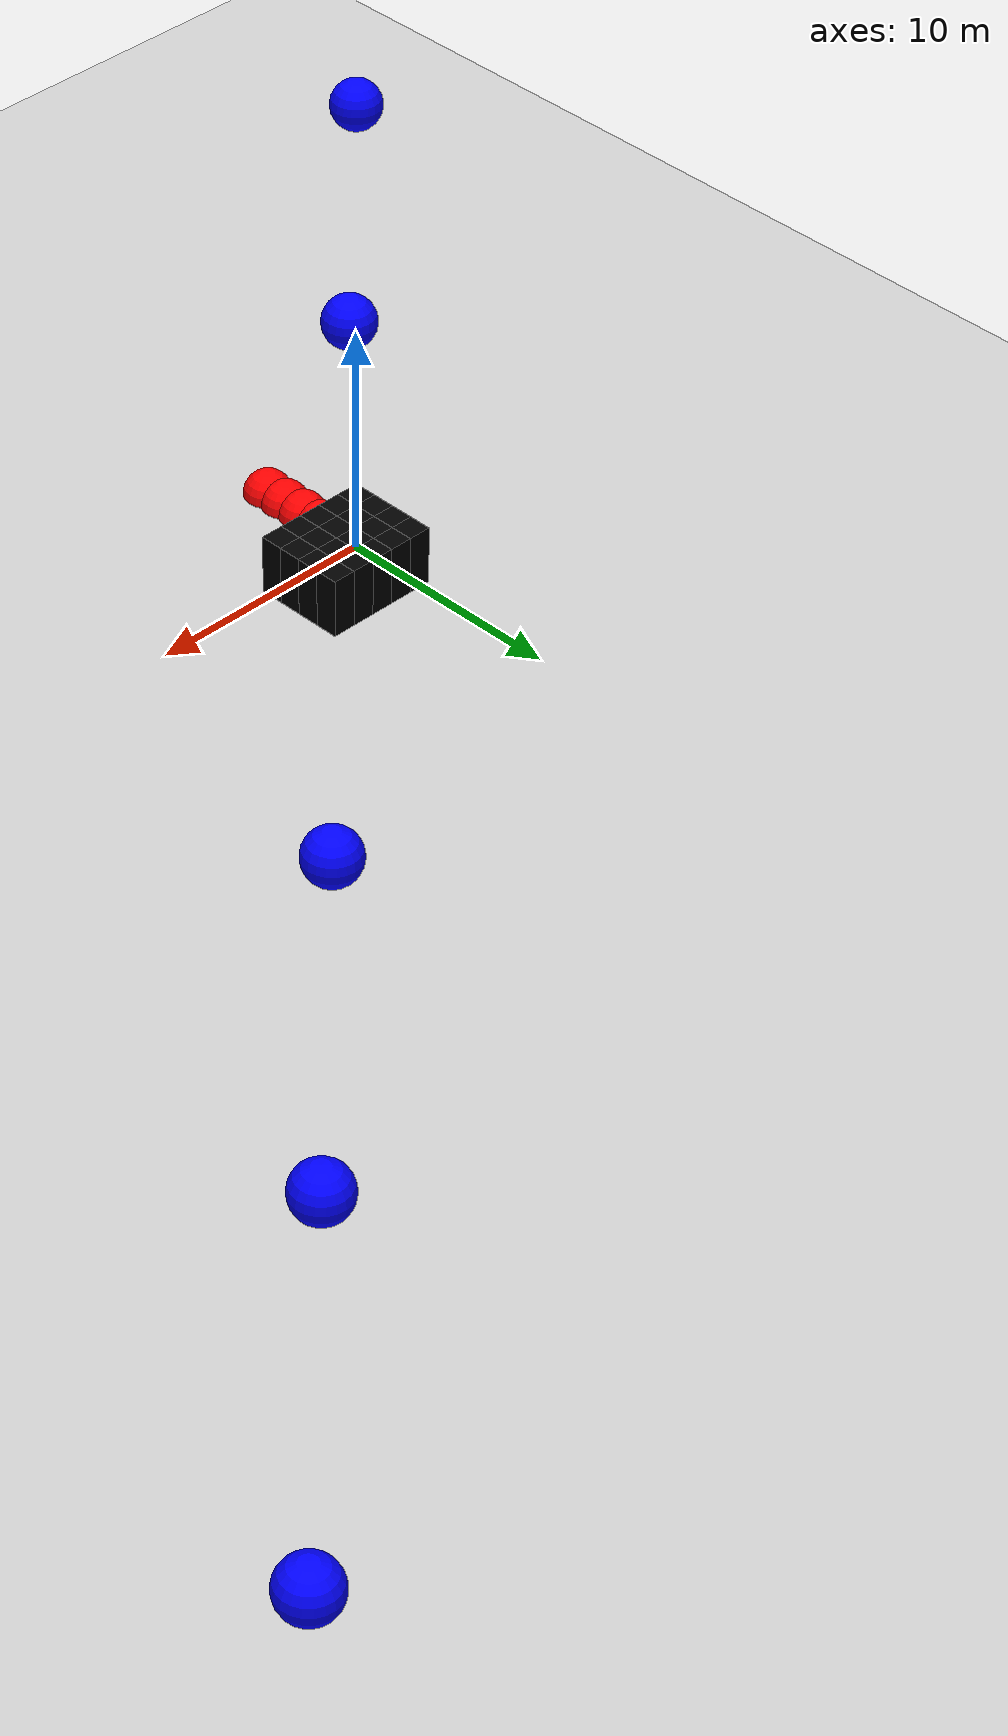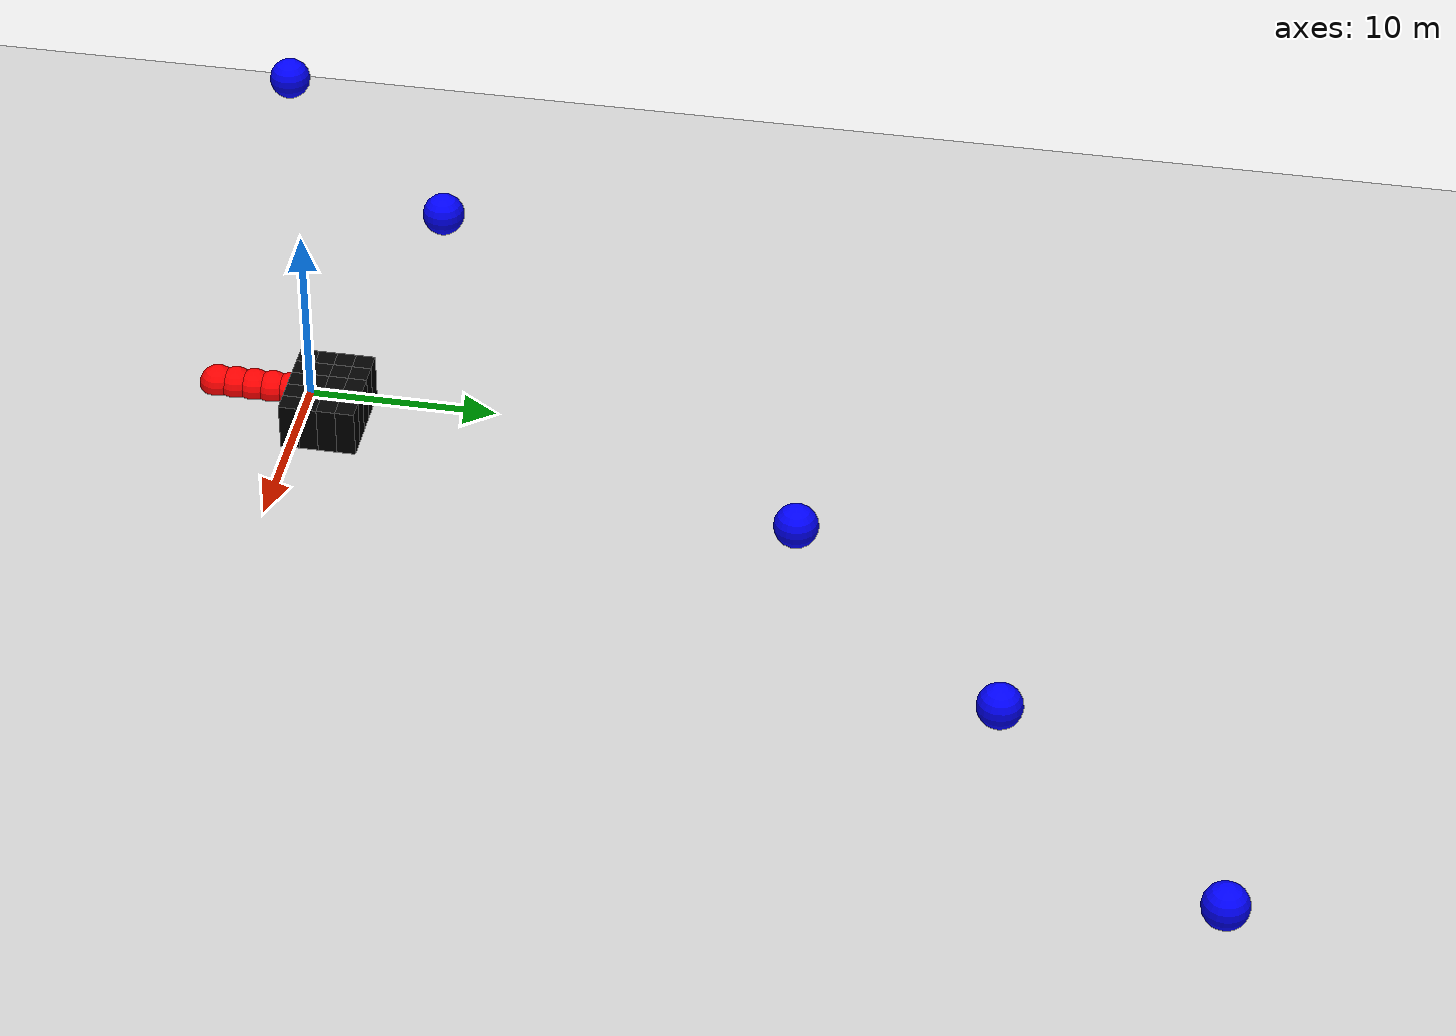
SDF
<?xml version="1.0" ?>
<sdf version="1.6">
   <world name="default">

      <include>
         <uri>model://ground_plane</uri>
      </include>

      <include>
         <uri>model://sun</uri>
      </include>

        <model name="box_00">
      <pose>0 0 0 0 0 0</pose>
      <link name="link_01">
        <pose>0 0 0 0 0 0</pose>
        <collision name="collision_01">
          <geometry>
            <box>
              <size>1 1 5</size>
            </box>
          </geometry>
        </collision>

        <visual name="visual_01">
          <material><ambient>0 0 0 1</ambient></material>
          <geometry>
            <box>
              <size>1 1 5</size>
            </box>
          </geometry>
        </visual>

      </link>
    </model>

<model name="box_01">
      <pose>1 0 0.0 0 0 0</pose>
      <link name="link_01">
        <pose>0 0 0.0 0 0 0</pose>
        <collision name="collision_01">
          <geometry>
            <box>
              <size>1 1 5</size>
            </box>
          </geometry>
        </collision>
        <visual name="visual_01">
                  <material><ambient>0 0 0 1</ambient></material>
          <geometry>
            <box>
             <size>1 1 5</size>
            </box>
          </geometry>
        </visual>
      </link>
    </model>

<model name="box_02">
      <pose>2 0 0.0 0 0 0</pose>
      <link name="link_01">
        <pose>0 0 0 0 0 0</pose>
        <collision name="collision_01">
          <geometry>
            <box>
              <size>1 1 5</size>
            </box>
          </geometry>
        </collision>
        <visual name="visual_01">
                  <material><ambient>0 0 0 1</ambient></material>
          <geometry>
            <box>
              <size>1 1 5</size>
            </box>
          </geometry>
        </visual>
      </link>
    </model>

<model name="box_03">
      <pose>3 0 0.0 0 0 0</pose>
      <link name="link_01">
        <pose>0 0 0 0 0 0</pose>
        <collision name="collision_01">
          <geometry>
            <box>
              <size>1 1 5</size>
            </box>
          </geometry>
        </collision>
        <visual name="visual_01">
                  <material><ambient>0 0 0 1</ambient></material>
          <geometry>
            <box>
              <size>1 1 5</size>
            </box>
          </geometry>
        </visual>
      </link>
    </model>

<model name="box_04">
      <pose>4 0 0.0 0 0 0</pose>
      <link name="link_01">
        <pose>0 0 0 0 0 0</pose>
        <collision name="collision_01">
          <geometry>
            <box>
              <size>1 1 5</size>
            </box>
          </geometry>
        </collision>
        <visual name="visual_01">
                  <material><ambient>0 0 0 1</ambient></material>
          <geometry>
            <box>
              <size>1 1 5</size>
            </box>
          </geometry>
        </visual>
      </link>
    </model>

<model name="box_05">
      <pose>0 1 0.0 0 0 0</pose>
      <link name="link_01">
        <pose>0 0 0 0 0 0</pose>
        <collision name="collision_01">
          <geometry>
            <box>
              <size>1 1 5</size>
            </box>
          </geometry>
        </collision>
        <visual name="visual_01">
                  <material><ambient>0 0 0 1</ambient></material>
          <geometry>
            <box>
              <size>1 1 5</size>
            </box>
          </geometry>
        </visual>
      </link>
    </model>

<model name="box_06">
      <pose>1 1 0.0 0 0 0</pose>
      <link name="link_01">
        <pose>0 0 0 0 0 0</pose>
        <collision name="collision_01">
          <geometry>
            <box>
             <size>1 1 5</size>
            </box>
          </geometry>
        </collision>
        <visual name="visual_01">
                  <material><ambient>0 0 0 1</ambient></material>
          <geometry>
            <box>
              <size>1 1 5</size>
            </box>
          </geometry>
        </visual>
      </link>
    </model>

<model name="box_07">
      <pose>2 1 0.0 0 0 0</pose>
      <link name="link_01">
        <pose>0 0 0 0 0 0</pose>
        <collision name="collision_01">
          <geometry>
            <box>
              <size>1 1 5</size>
            </box>
          </geometry>
        </collision>
        <visual name="visual_01">
        <material><ambient>0 0 0 1</ambient></material>
          <geometry>
            <box>
              <size>1 1 5</size>
            </box>
          </geometry>
        </visual>
      </link>
    </model>

<model name="box_08">
      <pose>3 1 0.0 0 0 0</pose>
      <link name="link_01">
        <pose>0 0 0 0 0 0</pose>
        <collision name="collision_01">
          <geometry>
            <box>
              <size>1 1 5</size>
            </box>
          </geometry>
        </collision>
        <visual name="visual_01">
                  <material><ambient>0 0 0 1</ambient></material>
          <geometry>
            <box>
              <size>1 1 5</size>
            </box>
          </geometry>
        </visual>
      </link>
    </model>

<model name="box_09">
      <pose>4 1 0.0 0 0 0</pose>
      <link name="link_01">
        <pose>0 0 0 0 0 0</pose>
        <collision name="collision_01">
          <geometry>
            <box>
             <size>1 1 5</size>
            </box>
          </geometry>
        </collision>
        <visual name="visual_01">
        <material><ambient>0 0 0 1</ambient></material>
          <geometry>
            <box>
              <size>1 1 5</size>
            </box>
          </geometry>
        </visual>
      </link>
    </model>

<model name="box_10">
      <pose>0 2 0.0 0 0 0</pose>
      <link name="link_01">
        <pose>0 0 0 0 0 0</pose>
        <collision name="collision_01">
          <geometry>
            <box>
              <size>1 1 5</size>
            </box>
          </geometry>
        </collision>
        <visual name="visual_01">
                  <material><ambient>0 0 0 1</ambient></material>
          <geometry>
            <box>
             <size>1 1 5</size>
            </box>
          </geometry>
        </visual>
      </link>
    </model>

<model name="box_11">
      <pose>1 2 0.0 0 0 0</pose>
      <link name="link_01">
        <pose>0 0 0 0 0 0</pose>
        <collision name="collision_01">
          <geometry>
            <box>
              <size>1 1 5</size>
            </box>
          </geometry>
        </collision>
        <visual name="visual_01">
                  <material><ambient>0 0 0 1</ambient></material>
          <geometry>
            <box>
              <size>1 1 5</size>
            </box>
          </geometry>
        </visual>
      </link>
    </model>

<model name="box_12">
      <pose>2 2 0.0 0 0 0</pose>
      <link name="link_01">
        <pose>0 0 0 0 0 0</pose>
        <collision name="collision_01">
          <geometry>
            <box>
              <size>1 1 5</size>
            </box>
          </geometry>
        </collision>
        <visual name="visual_01">
        <material><ambient>0 0 0 1</ambient></material>
          <geometry>
            <box>
              <size>1 1 5</size>
            </box>
          </geometry>
        </visual>
      </link>
    </model>

<model name="box_13">
      <pose>3 2 0.0 0 0 0</pose>
      <link name="link_01">
        <pose>0 0 0 0 0 0</pose>
        <collision name="collision_01">
          <geometry>
            <box>
              <size>1 1 5</size>
            </box>
          </geometry>
        </collision>
        <visual name="visual_01">
        <material><ambient>0 0 0 1</ambient></material>
          <geometry>
            <box>
              <size>1 1 5</size>
            </box>
          </geometry>
        </visual>
      </link>
    </model>

<model name="box_14">
      <pose>4 2 0.0 0 0 0</pose>
      <link name="link_01">
        <pose>0 0 0 0 0 0</pose>
        <collision name="collision_01">
          <geometry>
            <box>
              <size>1 1 5</size>
            </box>
          </geometry>
        </collision>
        <visual name="visual_01">
        <material><ambient>0 0 0 1</ambient></material>
          <geometry>
            <box>
              <size>1 1 5</size>
            </box>
          </geometry>
        </visual>
      </link>
    </model>

<model name="box_15">
      <pose>0 3 0.0 0 0 0</pose>
      <link name="link_01">
        <pose>0 0 0 0 0 0</pose>
        <collision name="collision_01">
          <geometry>
            <box>
              <size>1 1 5</size>
            </box>
          </geometry>
        </collision>
        <visual name="visual_01">
        <material><ambient>0 0 0 1</ambient></material>
          <geometry>
            <box>
              <size>1 1 5</size>
            </box>
          </geometry>
        </visual>
      </link>
    </model>

<model name="box_16">
      <pose>1 3 0.0 0 0 0</pose>
      <link name="link_01">
        <pose>0 0 0 0 0 0</pose>
        <collision name="collision_01">
          <geometry>
            <box>
              <size>1 1 5</size>
            </box>
          </geometry>
        </collision>
        <visual name="visual_01">
        <material><ambient>0 0 0 1</ambient></material>
          <geometry>
            <box>
              <size>1 1 5</size>
            </box>
          </geometry>
        </visual>
      </link>
    </model>

<model name="box_17">
      <pose>2 3 0.0 0 0 0</pose>
      <link name="link_01">
        <pose>0 0 0 0 0 0</pose>
        <collision name="collision_01">
          <geometry>
            <box>
              <size>1 1 5</size>
            </box>
          </geometry>
        </collision>
        <visual name="visual_01">
        <material><ambient>0 0 0 1</ambient></material>
          <geometry>
            <box>
              <size>1 1 5</size>
            </box>
          </geometry>
        </visual>
      </link>
    </model>

<model name="box_18">
      <pose>3 3 0.0 0 0 0</pose>
      <link name="link_01">
        <pose>0 0 0 0 0 0</pose>
        <collision name="collision_01">
          <geometry>
            <box>
             <size>1 1 5</size>
            </box>
          </geometry>
        </collision>
        <visual name="visual_01">
        <material><ambient>0 0 0 1</ambient></material>
          <geometry>
            <box>
              <size>1 1 5</size>
            </box>
          </geometry>
        </visual>
      </link>
    </model>

<model name="box_19">
      <pose>4 3 0.0 0 0 0</pose>
      <link name="link_01">
        <pose>0 0 0 0 0 0</pose>
        <collision name="collision_01">
          <geometry>
            <box>
              <size>1 1 5</size>
            </box>
          </geometry>
        </collision>
        <visual name="visual_01">
        <material><ambient>0 0 0 1</ambient></material>
          <geometry>
            <box>
              <size>1 1 5</size>
            </box>
          </geometry>
        </visual>
      </link>
    </model>

<model name="UAV_00">
    <pose>0 0 20 0 0 0</pose>
    <link name="link_00">
    <gravity>0</gravity>
      <pose>0 0 0 0 0 0</pose>
      <collision name="collision_00">
        <geometry>
          <sphere>
            <radius>1.0</radius>
          </sphere>
        </geometry>
      </collision>
      <visual name="visual_00">
      <material><ambient>0 0 1 1</ambient></material>
        <geometry>
          <sphere>
            <radius>1.0</radius>
          </sphere>
        </geometry>
      </visual>
    </link>
    <plugin name="object_controller" filename="libgazebo_ros_planar_move.so">
      <commandTopic>cmd_vel_UAV_00</commandTopic>
      <odometryTopic>odom_UAV_00</odometryTopic>
      <odometryFrame>odom_UAV_00</odometryFrame>
      <odometryRate>20.0</odometryRate>
      <robotBaseFrame>base_footprint</robotBaseFrame>
    </plugin>
</model>

<model name="UAV_01">
    <pose>10 10 20 0 0 0</pose>
    <link name="link_00">
    <gravity>0</gravity>
      <pose>0 0 0 0 0 0</pose>
      <collision name="collision_00">
        <geometry>
          <sphere>
            <radius>1.0</radius>
          </sphere>
        </geometry>
      </collision>
      <visual name="visual_00">
      <material><ambient>0 0 1 1</ambient></material>
        <geometry>
          <sphere>
            <radius>1.0</radius>
          </sphere>
        </geometry>
      </visual>
    </link>
        <plugin name="object_controller" filename="libgazebo_ros_planar_move.so">
      <commandTopic>cmd_vel_UAV_01</commandTopic>
      <odometryTopic>odom_UAV_01</odometryTopic>
      <odometryFrame>odom_UAV_01</odometryFrame>
      <odometryRate>20.0</odometryRate>
      <robotBaseFrame>base_footprint</robotBaseFrame>
    </plugin>
</model>

<model name="UAV_02">
    <pose>30 30 20 0 0 0</pose>
    <link name="link_00">
    <gravity>0</gravity>
      <pose>0 0 0 0 0 0</pose>
      <collision name="collision_00">
        <geometry>
          <sphere>
            <radius>1.0</radius>
          </sphere>
        </geometry>
      </collision>
      <visual name="visual_00">
      <material><ambient>0 0 1 1</ambient></material>
        <geometry>
          <sphere>
            <radius>1.0</radius>
          </sphere>
        </geometry>
      </visual>
    </link>
    <plugin name="object_controller" filename="libgazebo_ros_planar_move.so">
      <commandTopic>cmd_vel_UAV_02</commandTopic>
      <odometryTopic>odom_UAV_02</odometryTopic>
      <odometryFrame>odom_UAV_02</odometryFrame>
      <odometryRate>20.0</odometryRate>
      <robotBaseFrame>base_footprint</robotBaseFrame>
    </plugin>
</model>

<model name="UAV_03">
    <pose>40 40 20 0 0 0</pose>
    <link name="link_00">
    <gravity>0</gravity>
      <pose>0 0 0 0 0 0</pose>
      <collision name="collision_00">
        <geometry>
          <sphere>
            <radius>1.0</radius>
          </sphere>
        </geometry>
      </collision>
      <visual name="visual_00">
      <material><ambient>0 0 1 1</ambient></material>
        <geometry>
          <sphere>
            <radius>1.0</radius>
          </sphere>
        </geometry>
      </visual>
    </link>
    <plugin name="object_controller" filename="libgazebo_ros_planar_move.so">
      <commandTopic>cmd_vel_UAV_03</commandTopic>
      <odometryTopic>odom_UAV_03</odometryTopic>
      <odometryFrame>odom_UAV_03</odometryFrame>
      <odometryRate>20.0</odometryRate>
      <robotBaseFrame>base_footprint</robotBaseFrame>
    </plugin>
</model>

<model name="UAV_04">
    <pose>50 50 20 0 0 0</pose>
    <link name="link_00">
    <gravity>0</gravity>
      <pose>0 0 0 0 0 0</pose>
      <collision name="collision_00">
        <geometry>
          <sphere>
            <radius>1.0</radius>
          </sphere>
        </geometry>
      </collision>
      <visual name="visual_00">
      <material><ambient>0 0 1 1</ambient></material>
        <geometry>
          <sphere>
            <radius>1.0</radius>
          </sphere>
        </geometry>
      </visual>
    </link>
    <plugin name="object_controller" filename="libgazebo_ros_planar_move.so">
      <commandTopic>cmd_vel_UAV_04</commandTopic>
      <odometryTopic>odom_UAV_04</odometryTopic>
      <odometryFrame>odom_UAV_04</odometryFrame>
      <odometryRate>20.0</odometryRate>
      <robotBaseFrame>base_footprint</robotBaseFrame>
    </plugin>
</model>

<model name="target_00">
    <pose>0 -1 0 0 0 0</pose>
    <link name="link_00">
      <pose>0 0 0 0 0 0</pose>
      <collision name="collision_00">
        <geometry>
          <sphere>
            <radius>1.0</radius>
          </sphere>
        </geometry>
      </collision>
      <visual name="visual_00">
      <material><ambient>1 0 0 1</ambient></material>
        <geometry>
          <sphere>
            <radius>1.0</radius>
          </sphere>
        </geometry>
      </visual>
    </link>
</model>

<model name="target_01">
    <pose>0 -2 0 0 0 0</pose>
    <link name="link_00">
      <pose>0 0 0 0 0 0</pose>>
      <collision name="collision_00">
        <geometry>
          <sphere>
            <radius>1.0</radius>
          </sphere>
        </geometry>
      </collision>
      <visual name="visual_00">
	<material><ambient>1 0 0 1</ambient></material>
        <geometry>
          <sphere>
            <radius>1.0</radius>
          </sphere>
        </geometry>
      </visual>
    </link>
</model>

<model name="target_02">
    <pose>0 -3 0 0 0 0</pose>
    <link name="link_00">
     <pose>0 0 0 0 0 0</pose>
      <collision name="collision_00">
        <geometry>
          <sphere>
            <radius>1.0</radius>
          </sphere>
        </geometry>
      </collision>
      <visual name="visual_00">
        <material><ambient>1 0 0 1</ambient></material>
        <geometry>
          <sphere>
            <radius>1.0</radius>
          </sphere>
        </geometry>
      </visual>
    </link>
</model>

<model name="target_03">
    <pose>0 -4 0 0 0 0</pose>
    <link name="link_00">
     <pose>0 0 0 0 0 0</pose>
      <collision name="collision_00">
        <geometry>
          <sphere>
            <radius>1.0</radius>
          </sphere>
        </geometry>
      </collision>
      <visual name="visual_00">
        <material><ambient>1 0 0 1</ambient></material>
        <geometry>
          <sphere>
            <radius>1.0</radius>
          </sphere>
        </geometry>
      </visual>
    </link>
</model>

<model name="target_04">
    <pose>0 -5 0 0 0 0</pose>
    <link name="link_00">
     <pose>0 0 0 0 0 0</pose>
      <collision name="collision_00">
        <geometry>
          <sphere>
            <radius>1.0</radius>
          </sphere>
        </geometry>
      </collision>
      <visual name="visual_00">
        <material><ambient>1 0 0 1</ambient></material>
        <geometry>
          <sphere>
            <radius>1.0</radius>
          </sphere>
        </geometry>
      </visual>
    </link>
</model>

<model name="target_05">
    <pose>0 -5 0 0 0 0</pose>
    <link name="link_00">
     <pose>0 0 0 0 0 0</pose>
      <collision name="collision_00">
        <geometry>
          <sphere>
            <radius>1.0</radius>
          </sphere>
        </geometry>
      </collision>
      <visual name="visual_00">
        <material><ambient>1 0 0 1</ambient></material>
        <geometry>
          <sphere>
            <radius>1.0</radius>
          </sphere>
        </geometry>
      </visual>
    </link>
</model>

<model name="target_06">
    <pose>0 -5 0 0 0 0</pose>
    <link name="link_00">
     <pose>0 0 0 0 0 0</pose>
      <collision name="collision_00">
        <geometry>
          <sphere>
            <radius>1.0</radius>
          </sphere>
        </geometry>
      </collision>
      <visual name="visual_00">
        <material><ambient>1 0 0 1</ambient></material>
        <geometry>
          <sphere>
            <radius>1.0</radius>
          </sphere>
        </geometry>
      </visual>
    </link>
</model>

<model name="target_07">
    <pose>0 -5 0 0 0 0</pose>
    <link name="link_00">
     <pose>0 0 0 0 0 0</pose>
      <collision name="collision_00">
        <geometry>
          <sphere>
            <radius>1.0</radius>
          </sphere>
        </geometry>
      </collision>
      <visual name="visual_00">
        <material><ambient>1 0 0 1</ambient></material>
        <geometry>
          <sphere>
            <radius>1.0</radius>
          </sphere>
        </geometry>
      </visual>
    </link>
</model>

<model name="target_08">
    <pose>0 -5 0 0 0 0</pose>
    <link name="link_00">
     <pose>0 0 0 0 0 0</pose>
      <collision name="collision_00">
        <geometry>
          <sphere>
            <radius>1.0</radius>
          </sphere>
        </geometry>
      </collision>
      <visual name="visual_00">
        <material><ambient>1 0 0 1</ambient></material>
        <geometry>
          <sphere>
            <radius>1.0</radius>
          </sphere>
        </geometry>
      </visual>
    </link>
</model>

<model name="target_09">
    <pose>0 -5 0 0 0 0</pose>
    <link name="link_00">
     <pose>0 0 0 0 0 0</pose>
      <collision name="collision_00">
        <geometry>
          <sphere>
            <radius>1.0</radius>
          </sphere>
        </geometry>
      </collision>
      <visual name="visual_00">
        <material><ambient>1 0 0 1</ambient></material>
        <geometry>
          <sphere>
            <radius>1.0</radius>
          </sphere>
        </geometry>
      </visual>
    </link>
</model>

<model name="target_10">
    <pose>0 -5 0 0 0 0</pose>
    <link name="link_00">
     <pose>0 0 0 0 0 0</pose>
      <collision name="collision_00">
        <geometry>
          <sphere>
            <radius>1.0</radius>
          </sphere>
        </geometry>
      </collision>
      <visual name="visual_00">
        <material><ambient>1 0 0 1</ambient></material>
        <geometry>
          <sphere>
            <radius>1.0</radius>
          </sphere>
        </geometry>
      </visual>
    </link>
</model>

<model name="target_11">
    <pose>0 -5 0 0 0 0</pose>
    <link name="link_00">
     <pose>0 0 0 0 0 0</pose>
      <collision name="collision_00">
        <geometry>
          <sphere>
            <radius>1.0</radius>
          </sphere>
        </geometry>
      </collision>
      <visual name="visual_00">
        <material><ambient>1 0 0 1</ambient></material>
        <geometry>
          <sphere>
            <radius>1.0</radius>
          </sphere>
        </geometry>
      </visual>
    </link>
</model>

<model name="target_12">
    <pose>0 -5 0 0 0 0</pose>
    <link name="link_00">
     <pose>0 0 0 0 0 0</pose>
      <collision name="collision_00">
        <geometry>
          <sphere>
            <radius>1.0</radius>
          </sphere>
        </geometry>
      </collision>
      <visual name="visual_00">
        <material><ambient>1 0 0 1</ambient></material>
        <geometry>
          <sphere>
            <radius>1.0</radius>
          </sphere>
        </geometry>
      </visual>
    </link>
</model>

<model name="target_13">
    <pose>0 -5 0 0 0 0</pose>
    <link name="link_00">
     <pose>0 0 0 0 0 0</pose>
      <collision name="collision_00">
        <geometry>
          <sphere>
            <radius>1.0</radius>
          </sphere>
        </geometry>
      </collision>
      <visual name="visual_00">
        <material><ambient>1 0 0 1</ambient></material>
        <geometry>
          <sphere>
            <radius>1.0</radius>
          </sphere>
        </geometry>
      </visual>
    </link>
</model>

<model name="target_14">
    <pose>0 -5 0 0 0 0</pose>
    <link name="link_00">
     <pose>0 0 0 0 0 0</pose>
      <collision name="collision_00">
        <geometry>
          <sphere>
            <radius>1.0</radius>
          </sphere>
        </geometry>
      </collision>
      <visual name="visual_00">
        <material><ambient>1 0 0 1</ambient></material>
        <geometry>
          <sphere>
            <radius>1.0</radius>
          </sphere>
        </geometry>
      </visual>
    </link>
</model>

<model name="target_15">
    <pose>0 -5 0 0 0 0</pose>
    <link name="link_00">
     <pose>0 0 0 0 0 0</pose>
      <collision name="collision_00">
        <geometry>
          <sphere>
            <radius>1.0</radius>
          </sphere>
        </geometry>
      </collision>
      <visual name="visual_00">
        <material><ambient>1 0 0 1</ambient></material>
        <geometry>
          <sphere>
            <radius>1.0</radius>
          </sphere>
        </geometry>
      </visual>
    </link>
</model>

<model name="target_16">
    <pose>0 -5 0 0 0 0</pose>
    <link name="link_00">
     <pose>0 0 0 0 0 0</pose>
      <collision name="collision_00">
        <geometry>
          <sphere>
            <radius>1.0</radius>
          </sphere>
        </geometry>
      </collision>
      <visual name="visual_00">
        <material><ambient>1 0 0 1</ambient></material>
        <geometry>
          <sphere>
            <radius>1.0</radius>
          </sphere>
        </geometry>
      </visual>
    </link>
</model>

<model name="target_17">
    <pose>0 -5 0 0 0 0</pose>
    <link name="link_00">
     <pose>0 0 0 0 0 0</pose>
      <collision name="collision_00">
        <geometry>
          <sphere>
            <radius>1.0</radius>
          </sphere>
        </geometry>
      </collision>
      <visual name="visual_00">
        <material><ambient>1 0 0 1</ambient></material>
        <geometry>
          <sphere>
            <radius>1.0</radius>
          </sphere>
        </geometry>
      </visual>
    </link>
</model>

<model name="target_18">
    <pose>0 -5 0 0 0 0</pose>
    <link name="link_00">
     <pose>0 0 0 0 0 0</pose>
      <collision name="collision_00">
        <geometry>
          <sphere>
            <radius>1.0</radius>
          </sphere>
        </geometry>
      </collision>
      <visual name="visual_00">
        <material><ambient>1 0 0 1</ambient></material>
        <geometry>
          <sphere>
            <radius>1.0</radius>
          </sphere>
        </geometry>
      </visual>
    </link>
</model>

<model name="target_19">
    <pose>0 -5 0 0 0 0</pose>
    <link name="link_00">
     <pose>0 0 0 0 0 0</pose>
      <collision name="collision_00">
        <geometry>
          <sphere>
            <radius>1.0</radius>
          </sphere>
        </geometry>
      </collision>
      <visual name="visual_00">
        <material><ambient>1 0 0 1</ambient></material>
        <geometry>
          <sphere>
            <radius>1.0</radius>
          </sphere>
        </geometry>
      </visual>
    </link>
</model>

<model name="target_20">
    <pose>0 -5 0 0 0 0</pose>
    <link name="link_00">
     <pose>0 0 0 0 0 0</pose>
      <collision name="collision_00">
        <geometry>
          <sphere>
            <radius>1.0</radius>
          </sphere>
        </geometry>
      </collision>
      <visual name="visual_00">
        <material><ambient>1 0 0 1</ambient></material>
        <geometry>
          <sphere>
            <radius>1.0</radius>
          </sphere>
        </geometry>
      </visual>
    </link>
</model>

<model name="target_21">
    <pose>0 -5 0 0 0 0</pose>
    <link name="link_00">
     <pose>0 0 0 0 0 0</pose>
      <collision name="collision_00">
        <geometry>
          <sphere>
            <radius>1.0</radius>
          </sphere>
        </geometry>
      </collision>
      <visual name="visual_00">
        <material><ambient>1 0 0 1</ambient></material>
        <geometry>
          <sphere>
            <radius>1.0</radius>
          </sphere>
        </geometry>
      </visual>
    </link>
</model>

<model name="target_22">
    <pose>0 -5 0 0 0 0</pose>
    <link name="link_00">
     <pose>0 0 0 0 0 0</pose>
      <collision name="collision_00">
        <geometry>
          <sphere>
            <radius>1.0</radius>
          </sphere>
        </geometry>
      </collision>
      <visual name="visual_00">
        <material><ambient>1 0 0 1</ambient></material>
        <geometry>
          <sphere>
            <radius>1.0</radius>
          </sphere>
        </geometry>
      </visual>
    </link>
</model>

<model name="target_23">
    <pose>0 -5 0 0 0 0</pose>
    <link name="link_00">
     <pose>0 0 0 0 0 0</pose>
      <collision name="collision_00">
        <geometry>
          <sphere>
            <radius>1.0</radius>
          </sphere>
        </geometry>
      </collision>
      <visual name="visual_00">
        <material><ambient>1 0 0 1</ambient></material>
        <geometry>
          <sphere>
            <radius>1.0</radius>
          </sphere>
        </geometry>
      </visual>
    </link>
</model>

<model name="target_24">
    <pose>0 -5 0 0 0 0</pose>
    <link name="link_00">
     <pose>0 0 0 0 0 0</pose>
      <collision name="collision_00">
        <geometry>
          <sphere>
            <radius>1.0</radius>
          </sphere>
        </geometry>
      </collision>
      <visual name="visual_00">
        <material><ambient>1 0 0 1</ambient></material>
        <geometry>
          <sphere>
            <radius>1.0</radius>
          </sphere>
        </geometry>
      </visual>
    </link>
</model>

<model name="target_25">
    <pose>0 -5 0 0 0 0</pose>
    <link name="link_00">
     <pose>0 0 0 0 0 0</pose>
      <collision name="collision_00">
        <geometry>
          <sphere>
            <radius>1.0</radius>
          </sphere>
        </geometry>
      </collision>
      <visual name="visual_00">
        <material><ambient>1 0 0 1</ambient></material>
        <geometry>
          <sphere>
            <radius>1.0</radius>
          </sphere>
        </geometry>
      </visual>
    </link>
</model>

<model name="target_26">
    <pose>0 -5 0 0 0 0</pose>
    <link name="link_00">
     <pose>0 0 0 0 0 0</pose>
      <collision name="collision_00">
        <geometry>
          <sphere>
            <radius>1.0</radius>
          </sphere>
        </geometry>
      </collision>
      <visual name="visual_00">
        <material><ambient>1 0 0 1</ambient></material>
        <geometry>
          <sphere>
            <radius>1.0</radius>
          </sphere>
        </geometry>
      </visual>
    </link>
</model>

<model name="target_27">
    <pose>0 -5 0 0 0 0</pose>
    <link name="link_00">
     <pose>0 0 0 0 0 0</pose>
      <collision name="collision_00">
        <geometry>
          <sphere>
            <radius>1.0</radius>
          </sphere>
        </geometry>
      </collision>
      <visual name="visual_00">
        <material><ambient>1 0 0 1</ambient></material>
        <geometry>
          <sphere>
            <radius>1.0</radius>
          </sphere>
        </geometry>
      </visual>
    </link>
</model>

<model name="target_28">
    <pose>0 -5 0 0 0 0</pose>
    <link name="link_00">
     <pose>0 0 0 0 0 0</pose>
      <collision name="collision_00">
        <geometry>
          <sphere>
            <radius>1.0</radius>
          </sphere>
        </geometry>
      </collision>
      <visual name="visual_00">
        <material><ambient>1 0 0 1</ambient></material>
        <geometry>
          <sphere>
            <radius>1.0</radius>
          </sphere>
        </geometry>
      </visual>
    </link>
</model>

<model name="target_29">
    <pose>0 -5 0 0 0 0</pose>
    <link name="link_00">
     <pose>0 0 0 0 0 0</pose>
      <collision name="collision_00">
        <geometry>
          <sphere>
            <radius>1.0</radius>
          </sphere>
        </geometry>
      </collision>
      <visual name="visual_00">
        <material><ambient>1 0 0 1</ambient></material>
        <geometry>
          <sphere>
            <radius>1.0</radius>
          </sphere>
        </geometry>
      </visual>
    </link>
</model>

<model name="target_30">
    <pose>0 -5 0 0 0 0</pose>
    <link name="link_00">
     <pose>0 0 0 0 0 0</pose>
      <collision name="collision_00">
        <geometry>
          <sphere>
            <radius>1.0</radius>
          </sphere>
        </geometry>
      </collision>
      <visual name="visual_00">
        <material><ambient>1 0 0 1</ambient></material>
        <geometry>
          <sphere>
            <radius>1.0</radius>
          </sphere>
        </geometry>
      </visual>
    </link>
</model>

<model name="target_31">
    <pose>0 -5 0 0 0 0</pose>
    <link name="link_00">
     <pose>0 0 0 0 0 0</pose>
      <collision name="collision_00">
        <geometry>
          <sphere>
            <radius>1.0</radius>
          </sphere>
        </geometry>
      </collision>
      <visual name="visual_00">
        <material><ambient>1 0 0 1</ambient></material>
        <geometry>
          <sphere>
            <radius>1.0</radius>
          </sphere>
        </geometry>
      </visual>
    </link>
</model>

<model name="target_32">
    <pose>0 -5 0 0 0 0</pose>
    <link name="link_00">
     <pose>0 0 0 0 0 0</pose>
      <collision name="collision_00">
        <geometry>
          <sphere>
            <radius>1.0</radius>
          </sphere>
        </geometry>
      </collision>
      <visual name="visual_00">
        <material><ambient>1 0 0 1</ambient></material>
        <geometry>
          <sphere>
            <radius>1.0</radius>
          </sphere>
        </geometry>
      </visual>
    </link>
</model>

<model name="target_33">
    <pose>0 -5 0 0 0 0</pose>
    <link name="link_00">
     <pose>0 0 0 0 0 0</pose>
      <collision name="collision_00">
        <geometry>
          <sphere>
            <radius>1.0</radius>
          </sphere>
        </geometry>
      </collision>
      <visual name="visual_00">
        <material><ambient>1 0 0 1</ambient></material>
        <geometry>
          <sphere>
            <radius>1.0</radius>
          </sphere>
        </geometry>
      </visual>
    </link>
</model>

<model name="target_34">
    <pose>0 -5 0 0 0 0</pose>
    <link name="link_00">
     <pose>0 0 0 0 0 0</pose>
      <collision name="collision_00">
        <geometry>
          <sphere>
            <radius>1.0</radius>
          </sphere>
        </geometry>
      </collision>
      <visual name="visual_00">
        <material><ambient>1 0 0 1</ambient></material>
        <geometry>
          <sphere>
            <radius>1.0</radius>
          </sphere>
        </geometry>
      </visual>
    </link>
</model>

<model name="target_35">
    <pose>0 -5 0 0 0 0</pose>
    <link name="link_00">
     <pose>0 0 0 0 0 0</pose>
      <collision name="collision_00">
        <geometry>
          <sphere>
            <radius>1.0</radius>
          </sphere>
        </geometry>
      </collision>
      <visual name="visual_00">
        <material><ambient>1 0 0 1</ambient></material>
        <geometry>
          <sphere>
            <radius>1.0</radius>
          </sphere>
        </geometry>
      </visual>
    </link>
</model>

<model name="target_36">
    <pose>0 -5 0 0 0 0</pose>
    <link name="link_00">
     <pose>0 0 0 0 0 0</pose>
      <collision name="collision_00">
        <geometry>
          <sphere>
            <radius>1.0</radius>
          </sphere>
        </geometry>
      </collision>
      <visual name="visual_00">
        <material><ambient>1 0 0 1</ambient></material>
        <geometry>
          <sphere>
            <radius>1.0</radius>
          </sphere>
        </geometry>
      </visual>
    </link>
</model>

<model name="target_37">
    <pose>0 -5 0 0 0 0</pose>
    <link name="link_00">
     <pose>0 0 0 0 0 0</pose>
      <collision name="collision_00">
        <geometry>
          <sphere>
            <radius>1.0</radius>
          </sphere>
        </geometry>
      </collision>
      <visual name="visual_00">
        <material><ambient>1 0 0 1</ambient></material>
        <geometry>
          <sphere>
            <radius>1.0</radius>
          </sphere>
        </geometry>
      </visual>
    </link>
</model>

<model name="target_38">
    <pose>0 -5 0 0 0 0</pose>
    <link name="link_00">
     <pose>0 0 0 0 0 0</pose>
      <collision name="collision_00">
        <geometry>
          <sphere>
            <radius>1.0</radius>
          </sphere>
        </geometry>
      </collision>
      <visual name="visual_00">
        <material><ambient>1 0 0 1</ambient></material>
        <geometry>
          <sphere>
            <radius>1.0</radius>
          </sphere>
        </geometry>
      </visual>
    </link>
</model>

<model name="target_39">
    <pose>0 -5 0 0 0 0</pose>
    <link name="link_00">
     <pose>0 0 0 0 0 0</pose>
      <collision name="collision_00">
        <geometry>
          <sphere>
            <radius>1.0</radius>
          </sphere>
        </geometry>
      </collision>
      <visual name="visual_00">
        <material><ambient>1 0 0 1</ambient></material>
        <geometry>
          <sphere>
            <radius>1.0</radius>
          </sphere>
        </geometry>
      </visual>
    </link>
</model>

<model name="target_40">
    <pose>0 -5 0 0 0 0</pose>
    <link name="link_00">
     <pose>0 0 0 0 0 0</pose>
      <collision name="collision_00">
        <geometry>
          <sphere>
            <radius>1.0</radius>
          </sphere>
        </geometry>
      </collision>
      <visual name="visual_00">
        <material><ambient>1 0 0 1</ambient></material>
        <geometry>
          <sphere>
            <radius>1.0</radius>
          </sphere>
        </geometry>
      </visual>
    </link>
</model>

<model name="target_41">
    <pose>0 -5 0 0 0 0</pose>
    <link name="link_00">
     <pose>0 0 0 0 0 0</pose>
      <collision name="collision_00">
        <geometry>
          <sphere>
            <radius>1.0</radius>
          </sphere>
        </geometry>
      </collision>
      <visual name="visual_00">
        <material><ambient>1 0 0 1</ambient></material>
        <geometry>
          <sphere>
            <radius>1.0</radius>
          </sphere>
        </geometry>
      </visual>
    </link>
</model>

<model name="target_42">
    <pose>0 -5 0 0 0 0</pose>
    <link name="link_00">
     <pose>0 0 0 0 0 0</pose>
      <collision name="collision_00">
        <geometry>
          <sphere>
            <radius>1.0</radius>
          </sphere>
        </geometry>
      </collision>
      <visual name="visual_00">
        <material><ambient>1 0 0 1</ambient></material>
        <geometry>
          <sphere>
            <radius>1.0</radius>
          </sphere>
        </geometry>
      </visual>
    </link>
</model>

<model name="target_43">
    <pose>0 -5 0 0 0 0</pose>
    <link name="link_00">
     <pose>0 0 0 0 0 0</pose>
      <collision name="collision_00">
        <geometry>
          <sphere>
            <radius>1.0</radius>
          </sphere>
        </geometry>
      </collision>
      <visual name="visual_00">
        <material><ambient>1 0 0 1</ambient></material>
        <geometry>
          <sphere>
            <radius>1.0</radius>
          </sphere>
        </geometry>
      </visual>
    </link>
</model>

<model name="target_44">
    <pose>0 -5 0 0 0 0</pose>
    <link name="link_00">
     <pose>0 0 0 0 0 0</pose>
      <collision name="collision_00">
        <geometry>
          <sphere>
            <radius>1.0</radius>
          </sphere>
        </geometry>
      </collision>
      <visual name="visual_00">
        <material><ambient>1 0 0 1</ambient></material>
        <geometry>
          <sphere>
            <radius>1.0</radius>
          </sphere>
        </geometry>
      </visual>
    </link>
</model>

<model name="target_45">
    <pose>0 -5 0 0 0 0</pose>
    <link name="link_00">
     <pose>0 0 0 0 0 0</pose>
      <collision name="collision_00">
        <geometry>
          <sphere>
            <radius>1.0</radius>
          </sphere>
        </geometry>
      </collision>
      <visual name="visual_00">
        <material><ambient>1 0 0 1</ambient></material>
        <geometry>
          <sphere>
            <radius>1.0</radius>
          </sphere>
        </geometry>
      </visual>
    </link>
</model>

<model name="target_46">
    <pose>0 -5 0 0 0 0</pose>
    <link name="link_00">
     <pose>0 0 0 0 0 0</pose>
      <collision name="collision_00">
        <geometry>
          <sphere>
            <radius>1.0</radius>
          </sphere>
        </geometry>
      </collision>
      <visual name="visual_00">
        <material><ambient>1 0 0 1</ambient></material>
        <geometry>
          <sphere>
            <radius>1.0</radius>
          </sphere>
        </geometry>
      </visual>
    </link>
</model>

<model name="target_47">
    <pose>0 -5 0 0 0 0</pose>
    <link name="link_00">
     <pose>0 0 0 0 0 0</pose>
      <collision name="collision_00">
        <geometry>
          <sphere>
            <radius>1.0</radius>
          </sphere>
        </geometry>
      </collision>
      <visual name="visual_00">
        <material><ambient>1 0 0 1</ambient></material>
        <geometry>
          <sphere>
            <radius>1.0</radius>
          </sphere>
        </geometry>
      </visual>
    </link>
</model>

<model name="target_48">
    <pose>0 -5 0 0 0 0</pose>
    <link name="link_00">
     <pose>0 0 0 0 0 0</pose>
      <collision name="collision_00">
        <geometry>
          <sphere>
            <radius>1.0</radius>
          </sphere>
        </geometry>
      </collision>
      <visual name="visual_00">
        <material><ambient>1 0 0 1</ambient></material>
        <geometry>
          <sphere>
            <radius>1.0</radius>
          </sphere>
        </geometry>
      </visual>
    </link>
</model>

<model name="target_49">
    <pose>0 -5 0 0 0 0</pose>
    <link name="link_00">
     <pose>0 0 0 0 0 0</pose>
      <collision name="collision_00">
        <geometry>
          <sphere>
            <radius>1.0</radius>
          </sphere>
        </geometry>
      </collision>
      <visual name="visual_00">
        <material><ambient>1 0 0 1</ambient></material>
        <geometry>
          <sphere>
            <radius>1.0</radius>
          </sphere>
        </geometry>
      </visual>
    </link>
</model>

<model name="target_50">
    <pose>0 -5 0 0 0 0</pose>
    <link name="link_00">
     <pose>0 0 0 0 0 0</pose>
      <collision name="collision_00">
        <geometry>
          <sphere>
            <radius>1.0</radius>
          </sphere>
        </geometry>
      </collision>
      <visual name="visual_00">
        <material><ambient>1 0 0 1</ambient></material>
        <geometry>
          <sphere>
            <radius>1.0</radius>
          </sphere>
        </geometry>
      </visual>
    </link>
</model>

<model name="target_51">
    <pose>0 -5 0 0 0 0</pose>
    <link name="link_00">
     <pose>0 0 0 0 0 0</pose>
      <collision name="collision_00">
        <geometry>
          <sphere>
            <radius>1.0</radius>
          </sphere>
        </geometry>
      </collision>
      <visual name="visual_00">
        <material><ambient>1 0 0 1</ambient></material>
        <geometry>
          <sphere>
            <radius>1.0</radius>
          </sphere>
        </geometry>
      </visual>
    </link>
</model>

<model name="target_52">
    <pose>0 -5 0 0 0 0</pose>
    <link name="link_00">
     <pose>0 0 0 0 0 0</pose>
      <collision name="collision_00">
        <geometry>
          <sphere>
            <radius>1.0</radius>
          </sphere>
        </geometry>
      </collision>
      <visual name="visual_00">
        <material><ambient>1 0 0 1</ambient></material>
        <geometry>
          <sphere>
            <radius>1.0</radius>
          </sphere>
        </geometry>
      </visual>
    </link>
</model>

<model name="target_53">
    <pose>0 -5 0 0 0 0</pose>
    <link name="link_00">
     <pose>0 0 0 0 0 0</pose>
      <collision name="collision_00">
        <geometry>
          <sphere>
            <radius>1.0</radius>
          </sphere>
        </geometry>
      </collision>
      <visual name="visual_00">
        <material><ambient>1 0 0 1</ambient></material>
        <geometry>
          <sphere>
            <radius>1.0</radius>
          </sphere>
        </geometry>
      </visual>
    </link>
</model>

<model name="target_54">
    <pose>0 -5 0 0 0 0</pose>
    <link name="link_00">
     <pose>0 0 0 0 0 0</pose>
      <collision name="collision_00">
        <geometry>
          <sphere>
            <radius>1.0</radius>
          </sphere>
        </geometry>
      </collision>
      <visual name="visual_00">
        <material><ambient>1 0 0 1</ambient></material>
        <geometry>
          <sphere>
            <radius>1.0</radius>
          </sphere>
        </geometry>
      </visual>
    </link>
</model>

<model name="target_55">
    <pose>0 -5 0 0 0 0</pose>
    <link name="link_00">
     <pose>0 0 0 0 0 0</pose>
      <collision name="collision_00">
        <geometry>
          <sphere>
            <radius>1.0</radius>
          </sphere>
        </geometry>
      </collision>
      <visual name="visual_00">
        <material><ambient>1 0 0 1</ambient></material>
        <geometry>
          <sphere>
            <radius>1.0</radius>
          </sphere>
        </geometry>
      </visual>
    </link>
</model>

<model name="target_56">
    <pose>0 -5 0 0 0 0</pose>
    <link name="link_00">
     <pose>0 0 0 0 0 0</pose>
      <collision name="collision_00">
        <geometry>
          <sphere>
            <radius>1.0</radius>
          </sphere>
        </geometry>
      </collision>
      <visual name="visual_00">
        <material><ambient>1 0 0 1</ambient></material>
        <geometry>
          <sphere>
            <radius>1.0</radius>
          </sphere>
        </geometry>
      </visual>
    </link>
</model>

<model name="target_57">
    <pose>0 -5 0 0 0 0</pose>
    <link name="link_00">
     <pose>0 0 0 0 0 0</pose>
      <collision name="collision_00">
        <geometry>
          <sphere>
            <radius>1.0</radius>
          </sphere>
        </geometry>
      </collision>
      <visual name="visual_00">
        <material><ambient>1 0 0 1</ambient></material>
        <geometry>
          <sphere>
            <radius>1.0</radius>
          </sphere>
        </geometry>
      </visual>
    </link>
</model>

<model name="target_58">
    <pose>0 -5 0 0 0 0</pose>
    <link name="link_00">
     <pose>0 0 0 0 0 0</pose>
      <collision name="collision_00">
        <geometry>
          <sphere>
            <radius>1.0</radius>
          </sphere>
        </geometry>
      </collision>
      <visual name="visual_00">
        <material><ambient>1 0 0 1</ambient></material>
        <geometry>
          <sphere>
            <radius>1.0</radius>
          </sphere>
        </geometry>
      </visual>
    </link>
</model>

<model name="target_59">
    <pose>0 -5 0 0 0 0</pose>
    <link name="link_00">
     <pose>0 0 0 0 0 0</pose>
      <collision name="collision_00">
        <geometry>
          <sphere>
            <radius>1.0</radius>
          </sphere>
        </geometry>
      </collision>
      <visual name="visual_00">
        <material><ambient>1 0 0 1</ambient></material>
        <geometry>
          <sphere>
            <radius>1.0</radius>
          </sphere>
        </geometry>
      </visual>
    </link>
</model>

<model name="target_60">
    <pose>0 -5 0 0 0 0</pose>
    <link name="link_00">
     <pose>0 0 0 0 0 0</pose>
      <collision name="collision_00">
        <geometry>
          <sphere>
            <radius>1.0</radius>
          </sphere>
        </geometry>
      </collision>
      <visual name="visual_00">
        <material><ambient>1 0 0 1</ambient></material>
        <geometry>
          <sphere>
            <radius>1.0</radius>
          </sphere>
        </geometry>
      </visual>
    </link>
</model>

<model name="target_61">
    <pose>0 -5 0 0 0 0</pose>
    <link name="link_00">
     <pose>0 0 0 0 0 0</pose>
      <collision name="collision_00">
        <geometry>
          <sphere>
            <radius>1.0</radius>
          </sphere>
        </geometry>
      </collision>
      <visual name="visual_00">
        <material><ambient>1 0 0 1</ambient></material>
        <geometry>
          <sphere>
            <radius>1.0</radius>
          </sphere>
        </geometry>
      </visual>
    </link>
</model>

<model name="target_62">
    <pose>0 -5 0 0 0 0</pose>
    <link name="link_00">
     <pose>0 0 0 0 0 0</pose>
      <collision name="collision_00">
        <geometry>
          <sphere>
            <radius>1.0</radius>
          </sphere>
        </geometry>
      </collision>
      <visual name="visual_00">
        <material><ambient>1 0 0 1</ambient></material>
        <geometry>
          <sphere>
            <radius>1.0</radius>
          </sphere>
        </geometry>
      </visual>
    </link>
</model>

<model name="target_63">
    <pose>0 -5 0 0 0 0</pose>
    <link name="link_00">
     <pose>0 0 0 0 0 0</pose>
      <collision name="collision_00">
        <geometry>
          <sphere>
            <radius>1.0</radius>
          </sphere>
        </geometry>
      </collision>
      <visual name="visual_00">
        <material><ambient>1 0 0 1</ambient></material>
        <geometry>
          <sphere>
            <radius>1.0</radius>
          </sphere>
        </geometry>
      </visual>
    </link>
</model>

<model name="target_64">
    <pose>0 -5 0 0 0 0</pose>
    <link name="link_00">
     <pose>0 0 0 0 0 0</pose>
      <collision name="collision_00">
        <geometry>
          <sphere>
            <radius>1.0</radius>
          </sphere>
        </geometry>
      </collision>
      <visual name="visual_00">
        <material><ambient>1 0 0 1</ambient></material>
        <geometry>
          <sphere>
            <radius>1.0</radius>
          </sphere>
        </geometry>
      </visual>
    </link>
</model>

<model name="target_65">
    <pose>0 -5 0 0 0 0</pose>
    <link name="link_00">
     <pose>0 0 0 0 0 0</pose>
      <collision name="collision_00">
        <geometry>
          <sphere>
            <radius>1.0</radius>
          </sphere>
        </geometry>
      </collision>
      <visual name="visual_00">
        <material><ambient>1 0 0 1</ambient></material>
        <geometry>
          <sphere>
            <radius>1.0</radius>
          </sphere>
        </geometry>
      </visual>
    </link>
</model>

<model name="target_66">
    <pose>0 -5 0 0 0 0</pose>
    <link name="link_00">
     <pose>0 0 0 0 0 0</pose>
      <collision name="collision_00">
        <geometry>
          <sphere>
            <radius>1.0</radius>
          </sphere>
        </geometry>
      </collision>
      <visual name="visual_00">
        <material><ambient>1 0 0 1</ambient></material>
        <geometry>
          <sphere>
            <radius>1.0</radius>
          </sphere>
        </geometry>
      </visual>
    </link>
</model>

<model name="target_67">
    <pose>0 -5 0 0 0 0</pose>
    <link name="link_00">
     <pose>0 0 0 0 0 0</pose>
      <collision name="collision_00">
        <geometry>
          <sphere>
            <radius>1.0</radius>
          </sphere>
        </geometry>
      </collision>
      <visual name="visual_00">
        <material><ambient>1 0 0 1</ambient></material>
        <geometry>
          <sphere>
            <radius>1.0</radius>
          </sphere>
        </geometry>
      </visual>
    </link>
</model>

<model name="target_68">
    <pose>0 -5 0 0 0 0</pose>
    <link name="link_00">
     <pose>0 0 0 0 0 0</pose>
      <collision name="collision_00">
        <geometry>
          <sphere>
            <radius>1.0</radius>
          </sphere>
        </geometry>
      </collision>
      <visual name="visual_00">
        <material><ambient>1 0 0 1</ambient></material>
        <geometry>
          <sphere>
            <radius>1.0</radius>
          </sphere>
        </geometry>
      </visual>
    </link>
</model>

<model name="target_69">
    <pose>0 -5 0 0 0 0</pose>
    <link name="link_00">
     <pose>0 0 0 0 0 0</pose>
      <collision name="collision_00">
        <geometry>
          <sphere>
            <radius>1.0</radius>
          </sphere>
        </geometry>
      </collision>
      <visual name="visual_00">
        <material><ambient>1 0 0 1</ambient></material>
        <geometry>
          <sphere>
            <radius>1.0</radius>
          </sphere>
        </geometry>
      </visual>
    </link>
</model>

<model name="target_70">
    <pose>0 -5 0 0 0 0</pose>
    <link name="link_00">
     <pose>0 0 0 0 0 0</pose>
      <collision name="collision_00">
        <geometry>
          <sphere>
            <radius>1.0</radius>
          </sphere>
        </geometry>
      </collision>
      <visual name="visual_00">
        <material><ambient>1 0 0 1</ambient></material>
        <geometry>
          <sphere>
            <radius>1.0</radius>
          </sphere>
        </geometry>
      </visual>
    </link>
</model>

<model name="target_71">
    <pose>0 -5 0 0 0 0</pose>
    <link name="link_00">
     <pose>0 0 0 0 0 0</pose>
      <collision name="collision_00">
        <geometry>
          <sphere>
            <radius>1.0</radius>
          </sphere>
        </geometry>
      </collision>
      <visual name="visual_00">
        <material><ambient>1 0 0 1</ambient></material>
        <geometry>
          <sphere>
            <radius>1.0</radius>
          </sphere>
        </geometry>
      </visual>
    </link>
</model>

<model name="target_72">
    <pose>0 -5 0 0 0 0</pose>
    <link name="link_00">
     <pose>0 0 0 0 0 0</pose>
      <collision name="collision_00">
        <geometry>
          <sphere>
            <radius>1.0</radius>
          </sphere>
        </geometry>
      </collision>
      <visual name="visual_00">
        <material><ambient>1 0 0 1</ambient></material>
        <geometry>
          <sphere>
            <radius>1.0</radius>
          </sphere>
        </geometry>
      </visual>
    </link>
</model>

<model name="target_73">
    <pose>0 -5 0 0 0 0</pose>
    <link name="link_00">
     <pose>0 0 0 0 0 0</pose>
      <collision name="collision_00">
        <geometry>
          <sphere>
            <radius>1.0</radius>
          </sphere>
        </geometry>
      </collision>
      <visual name="visual_00">
        <material><ambient>1 0 0 1</ambient></material>
        <geometry>
          <sphere>
            <radius>1.0</radius>
          </sphere>
        </geometry>
      </visual>
    </link>
</model>

<model name="target_74">
    <pose>0 -5 0 0 0 0</pose>
    <link name="link_00">
     <pose>0 0 0 0 0 0</pose>
      <collision name="collision_00">
        <geometry>
          <sphere>
            <radius>1.0</radius>
          </sphere>
        </geometry>
      </collision>
      <visual name="visual_00">
        <material><ambient>1 0 0 1</ambient></material>
        <geometry>
          <sphere>
            <radius>1.0</radius>
          </sphere>
        </geometry>
      </visual>
    </link>
</model>

<model name="target_75">
    <pose>0 -5 0 0 0 0</pose>
    <link name="link_00">
     <pose>0 0 0 0 0 0</pose>
      <collision name="collision_00">
        <geometry>
          <sphere>
            <radius>1.0</radius>
          </sphere>
        </geometry>
      </collision>
      <visual name="visual_00">
        <material><ambient>1 0 0 1</ambient></material>
        <geometry>
          <sphere>
            <radius>1.0</radius>
          </sphere>
        </geometry>
      </visual>
    </link>
</model>

<model name="target_76">
    <pose>0 -5 0 0 0 0</pose>
    <link name="link_00">
     <pose>0 0 0 0 0 0</pose>
      <collision name="collision_00">
        <geometry>
          <sphere>
            <radius>1.0</radius>
          </sphere>
        </geometry>
      </collision>
      <visual name="visual_00">
        <material><ambient>1 0 0 1</ambient></material>
        <geometry>
          <sphere>
            <radius>1.0</radius>
          </sphere>
        </geometry>
      </visual>
    </link>
</model>

<model name="target_77">
    <pose>0 -5 0 0 0 0</pose>
    <link name="link_00">
     <pose>0 0 0 0 0 0</pose>
      <collision name="collision_00">
        <geometry>
          <sphere>
            <radius>1.0</radius>
          </sphere>
        </geometry>
      </collision>
      <visual name="visual_00">
        <material><ambient>1 0 0 1</ambient></material>
        <geometry>
          <sphere>
            <radius>1.0</radius>
          </sphere>
        </geometry>
      </visual>
    </link>
</model>

<model name="target_78">
    <pose>0 -5 0 0 0 0</pose>
    <link name="link_00">
     <pose>0 0 0 0 0 0</pose>
      <collision name="collision_00">
        <geometry>
          <sphere>
            <radius>1.0</radius>
          </sphere>
        </geometry>
      </collision>
      <visual name="visual_00">
        <material><ambient>1 0 0 1</ambient></material>
        <geometry>
          <sphere>
            <radius>1.0</radius>
          </sphere>
        </geometry>
      </visual>
    </link>
</model>

<model name="target_79">
    <pose>0 -5 0 0 0 0</pose>
    <link name="link_00">
     <pose>0 0 0 0 0 0</pose>
      <collision name="collision_00">
        <geometry>
          <sphere>
            <radius>1.0</radius>
          </sphere>
        </geometry>
      </collision>
      <visual name="visual_00">
        <material><ambient>1 0 0 1</ambient></material>
        <geometry>
          <sphere>
            <radius>1.0</radius>
          </sphere>
        </geometry>
      </visual>
    </link>
</model>

<model name="target_80">
    <pose>0 -5 0 0 0 0</pose>
    <link name="link_00">
     <pose>0 0 0 0 0 0</pose>
      <collision name="collision_00">
        <geometry>
          <sphere>
            <radius>1.0</radius>
          </sphere>
        </geometry>
      </collision>
      <visual name="visual_00">
        <material><ambient>1 0 0 1</ambient></material>
        <geometry>
          <sphere>
            <radius>1.0</radius>
          </sphere>
        </geometry>
      </visual>
    </link>
</model>

<model name="target_81">
    <pose>0 -5 0 0 0 0</pose>
    <link name="link_00">
     <pose>0 0 0 0 0 0</pose>
      <collision name="collision_00">
        <geometry>
          <sphere>
            <radius>1.0</radius>
          </sphere>
        </geometry>
      </collision>
      <visual name="visual_00">
        <material><ambient>1 0 0 1</ambient></material>
        <geometry>
          <sphere>
            <radius>1.0</radius>
          </sphere>
        </geometry>
      </visual>
    </link>
</model>

<model name="target_82">
    <pose>0 -5 0 0 0 0</pose>
    <link name="link_00">
     <pose>0 0 0 0 0 0</pose>
      <collision name="collision_00">
        <geometry>
          <sphere>
            <radius>1.0</radius>
          </sphere>
        </geometry>
      </collision>
      <visual name="visual_00">
        <material><ambient>1 0 0 1</ambient></material>
        <geometry>
          <sphere>
            <radius>1.0</radius>
          </sphere>
        </geometry>
      </visual>
    </link>
</model>

<model name="target_83">
    <pose>0 -5 0 0 0 0</pose>
    <link name="link_00">
     <pose>0 0 0 0 0 0</pose>
      <collision name="collision_00">
        <geometry>
          <sphere>
            <radius>1.0</radius>
          </sphere>
        </geometry>
      </collision>
      <visual name="visual_00">
        <material><ambient>1 0 0 1</ambient></material>
        <geometry>
          <sphere>
            <radius>1.0</radius>
          </sphere>
        </geometry>
      </visual>
    </link>
</model>

<model name="target_84">
    <pose>0 -5 0 0 0 0</pose>
    <link name="link_00">
     <pose>0 0 0 0 0 0</pose>
      <collision name="collision_00">
        <geometry>
          <sphere>
            <radius>1.0</radius>
          </sphere>
        </geometry>
      </collision>
      <visual name="visual_00">
        <material><ambient>1 0 0 1</ambient></material>
        <geometry>
          <sphere>
            <radius>1.0</radius>
          </sphere>
        </geometry>
      </visual>
    </link>
</model>

<model name="target_85">
    <pose>0 -5 0 0 0 0</pose>
    <link name="link_00">
     <pose>0 0 0 0 0 0</pose>
      <collision name="collision_00">
        <geometry>
          <sphere>
            <radius>1.0</radius>
          </sphere>
        </geometry>
      </collision>
      <visual name="visual_00">
        <material><ambient>1 0 0 1</ambient></material>
        <geometry>
          <sphere>
            <radius>1.0</radius>
          </sphere>
        </geometry>
      </visual>
    </link>
</model>

<model name="target_86">
    <pose>0 -5 0 0 0 0</pose>
    <link name="link_00">
     <pose>0 0 0 0 0 0</pose>
      <collision name="collision_00">
        <geometry>
          <sphere>
            <radius>1.0</radius>
          </sphere>
        </geometry>
      </collision>
      <visual name="visual_00">
        <material><ambient>1 0 0 1</ambient></material>
        <geometry>
          <sphere>
            <radius>1.0</radius>
          </sphere>
        </geometry>
      </visual>
    </link>
</model>

<model name="target_87">
    <pose>0 -5 0 0 0 0</pose>
    <link name="link_00">
     <pose>0 0 0 0 0 0</pose>
      <collision name="collision_00">
        <geometry>
          <sphere>
            <radius>1.0</radius>
          </sphere>
        </geometry>
      </collision>
      <visual name="visual_00">
        <material><ambient>1 0 0 1</ambient></material>
        <geometry>
          <sphere>
            <radius>1.0</radius>
          </sphere>
        </geometry>
      </visual>
    </link>
</model>

<model name="target_88">
    <pose>0 -5 0 0 0 0</pose>
    <link name="link_00">
     <pose>0 0 0 0 0 0</pose>
      <collision name="collision_00">
        <geometry>
          <sphere>
            <radius>1.0</radius>
          </sphere>
        </geometry>
      </collision>
      <visual name="visual_00">
        <material><ambient>1 0 0 1</ambient></material>
        <geometry>
          <sphere>
            <radius>1.0</radius>
          </sphere>
        </geometry>
      </visual>
    </link>
</model>

<model name="target_89">
    <pose>0 -5 0 0 0 0</pose>
    <link name="link_00">
     <pose>0 0 0 0 0 0</pose>
      <collision name="collision_00">
        <geometry>
          <sphere>
            <radius>1.0</radius>
          </sphere>
        </geometry>
      </collision>
      <visual name="visual_00">
        <material><ambient>1 0 0 1</ambient></material>
        <geometry>
          <sphere>
            <radius>1.0</radius>
          </sphere>
        </geometry>
      </visual>
    </link>
</model>

<model name="target_90">
    <pose>0 -5 0 0 0 0</pose>
    <link name="link_00">
     <pose>0 0 0 0 0 0</pose>
      <collision name="collision_00">
        <geometry>
          <sphere>
            <radius>1.0</radius>
          </sphere>
        </geometry>
      </collision>
      <visual name="visual_00">
        <material><ambient>1 0 0 1</ambient></material>
        <geometry>
          <sphere>
            <radius>1.0</radius>
          </sphere>
        </geometry>
      </visual>
    </link>
</model>

<model name="target_91">
    <pose>0 -5 0 0 0 0</pose>
    <link name="link_00">
     <pose>0 0 0 0 0 0</pose>
      <collision name="collision_00">
        <geometry>
          <sphere>
            <radius>1.0</radius>
          </sphere>
        </geometry>
      </collision>
      <visual name="visual_00">
        <material><ambient>1 0 0 1</ambient></material>
        <geometry>
          <sphere>
            <radius>1.0</radius>
          </sphere>
        </geometry>
      </visual>
    </link>
</model>

<model name="target_92">
    <pose>0 -5 0 0 0 0</pose>
    <link name="link_00">
     <pose>0 0 0 0 0 0</pose>
      <collision name="collision_00">
        <geometry>
          <sphere>
            <radius>1.0</radius>
          </sphere>
        </geometry>
      </collision>
      <visual name="visual_00">
        <material><ambient>1 0 0 1</ambient></material>
        <geometry>
          <sphere>
            <radius>1.0</radius>
          </sphere>
        </geometry>
      </visual>
    </link>
</model>

<model name="target_93">
    <pose>0 -5 0 0 0 0</pose>
    <link name="link_00">
     <pose>0 0 0 0 0 0</pose>
      <collision name="collision_00">
        <geometry>
          <sphere>
            <radius>1.0</radius>
          </sphere>
        </geometry>
      </collision>
      <visual name="visual_00">
        <material><ambient>1 0 0 1</ambient></material>
        <geometry>
          <sphere>
            <radius>1.0</radius>
          </sphere>
        </geometry>
      </visual>
    </link>
</model>

<model name="target_94">
    <pose>0 -5 0 0 0 0</pose>
    <link name="link_00">
     <pose>0 0 0 0 0 0</pose>
      <collision name="collision_00">
        <geometry>
          <sphere>
            <radius>1.0</radius>
          </sphere>
        </geometry>
      </collision>
      <visual name="visual_00">
        <material><ambient>1 0 0 1</ambient></material>
        <geometry>
          <sphere>
            <radius>1.0</radius>
          </sphere>
        </geometry>
      </visual>
    </link>
</model>

<model name="target_95">
    <pose>0 -5 0 0 0 0</pose>
    <link name="link_00">
     <pose>0 0 0 0 0 0</pose>
      <collision name="collision_00">
        <geometry>
          <sphere>
            <radius>1.0</radius>
          </sphere>
        </geometry>
      </collision>
      <visual name="visual_00">
        <material><ambient>1 0 0 1</ambient></material>
        <geometry>
          <sphere>
            <radius>1.0</radius>
          </sphere>
        </geometry>
      </visual>
    </link>
</model>

<model name="target_96">
    <pose>0 -5 0 0 0 0</pose>
    <link name="link_00">
     <pose>0 0 0 0 0 0</pose>
      <collision name="collision_00">
        <geometry>
          <sphere>
            <radius>1.0</radius>
          </sphere>
        </geometry>
      </collision>
      <visual name="visual_00">
        <material><ambient>1 0 0 1</ambient></material>
        <geometry>
          <sphere>
            <radius>1.0</radius>
          </sphere>
        </geometry>
      </visual>
    </link>
</model>

<model name="target_97">
    <pose>0 -5 0 0 0 0</pose>
    <link name="link_00">
     <pose>0 0 0 0 0 0</pose>
      <collision name="collision_00">
        <geometry>
          <sphere>
            <radius>1.0</radius>
          </sphere>
        </geometry>
      </collision>
      <visual name="visual_00">
        <material><ambient>1 0 0 1</ambient></material>
        <geometry>
          <sphere>
            <radius>1.0</radius>
          </sphere>
        </geometry>
      </visual>
    </link>
</model>

<model name="target_98">
    <pose>0 -5 0 0 0 0</pose>
    <link name="link_00">
     <pose>0 0 0 0 0 0</pose>
      <collision name="collision_00">
        <geometry>
          <sphere>
            <radius>1.0</radius>
          </sphere>
        </geometry>
      </collision>
      <visual name="visual_00">
        <material><ambient>1 0 0 1</ambient></material>
        <geometry>
          <sphere>
            <radius>1.0</radius>
          </sphere>
        </geometry>
      </visual>
    </link>
</model>

<model name="target_99">
    <pose>0 -5 0 0 0 0</pose>
    <link name="link_00">
     <pose>0 0 0 0 0 0</pose>
      <collision name="collision_00">
        <geometry>
          <sphere>
            <radius>1.0</radius>
          </sphere>
        </geometry>
      </collision>
      <visual name="visual_00">
        <material><ambient>1 0 0 1</ambient></material>
        <geometry>
          <sphere>
            <radius>1.0</radius>
          </sphere>
        </geometry>
      </visual>
    </link>
</model>

   </world>

</sdf>
